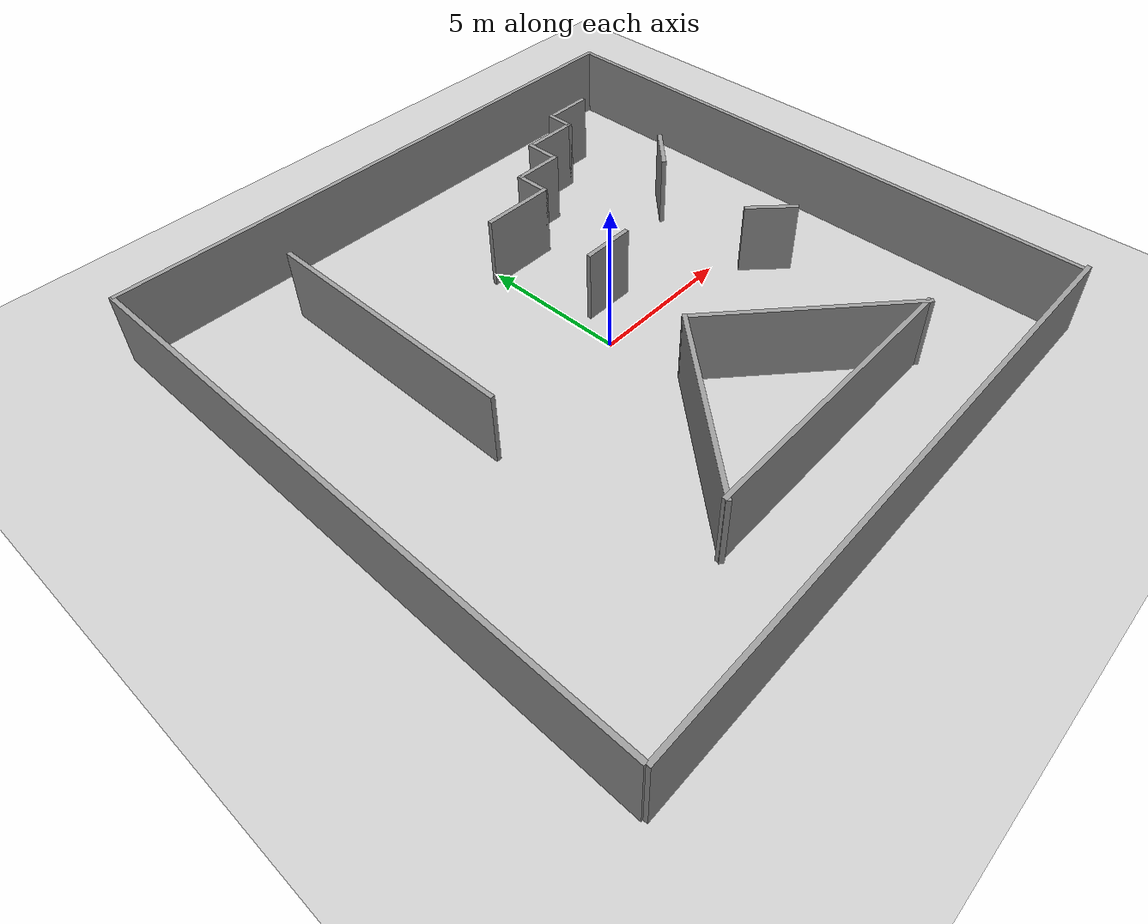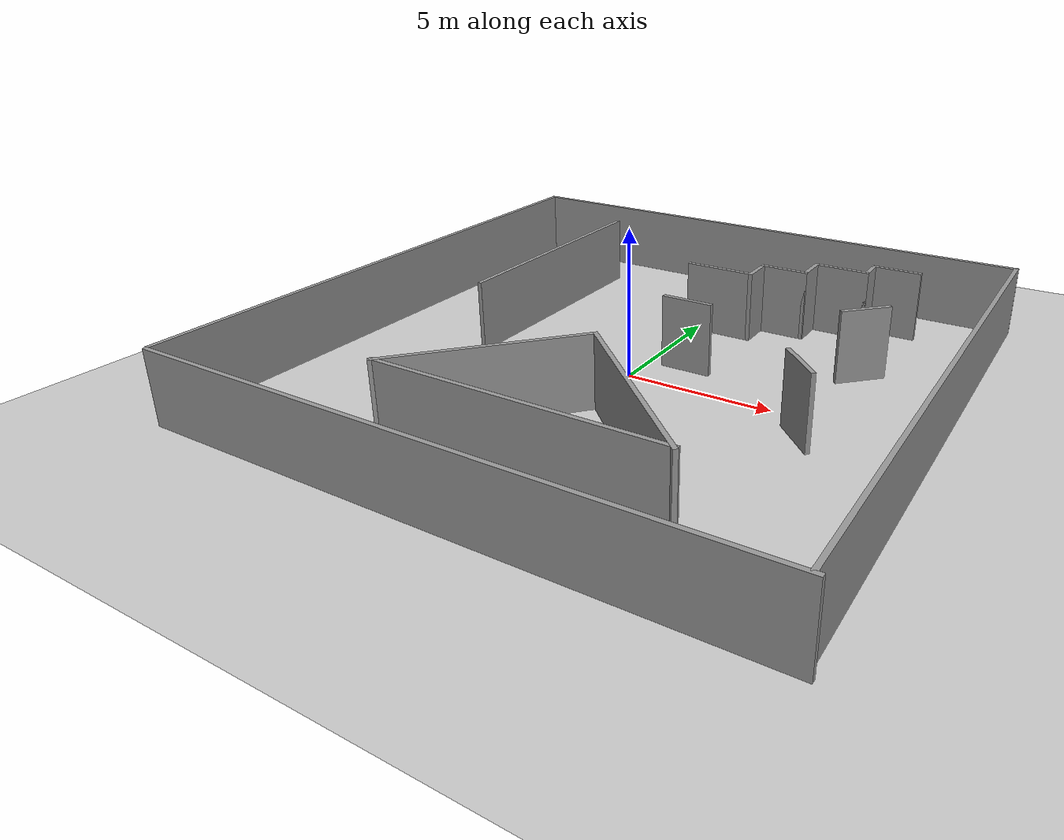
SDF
<sdf version="1.7">
 <world name="default">
  <light name="sun" type="directional">
   <pose>0 0 10 0 -0 0</pose>
   <diffuse>0.8 0.8 0.8 1</diffuse>
   <specular>0.2 0.2 0.2 1</specular>
   <attenuation>
    <range>1000</range>
    <constant>0.9</constant>
    <linear>0.01</linear>
    <quadratic>0.001</quadratic>
   </attenuation>
   <direction>-0.5 0.1 -0.9</direction>
   <spot><inner_angle>0</inner_angle><outer_angle>0</outer_angle><falloff>0</falloff></spot>
  </light>
  <model name="ground_plane">
   <static>1</static>
   <link name="link">
    <collision name="collision">
     <geometry><plane><normal>0 0 1</normal><size>100 100</size></plane></geometry>
     <surface>
      <contact><collide_bitmask>65535</collide_bitmask></contact>
      <friction><ode><mu>100</mu><mu2>50</mu2></ode></friction>
     </surface>
    </collision>
    <visual name="visual">
     <cast_shadows>0</cast_shadows>
     <geometry><plane><normal>0 0 1</normal><size>100 100</size></plane></geometry>
     <material>
      <script><uri>file://media/materials/scripts/gazebo.material</uri><name>Gazebo/Grey</name></script>
     </material>
    </visual>
   </link>
  </model>
  <gravity>0 0 -9.8</gravity>
  <magnetic_field>6e-06 2.3e-05 -4.2e-05</magnetic_field>
  <atmosphere type="adiabatic"/>
  <physics type="ode">
   <max_step_size>0.001</max_step_size>
   <real_time_factor>1</real_time_factor>
   <real_time_update_rate>1000</real_time_update_rate>
  </physics>
  <scene><ambient>0.4 0.4 0.4 1</ambient><background>0.7 0.7 0.7 1</background><shadows>1</shadows></scene>
  <spherical_coordinates>
   <surface_model>EARTH_WGS84</surface_model>
   <latitude_deg>0</latitude_deg>
   <longitude_deg>0</longitude_deg>
   <elevation>0</elevation>
   <heading_deg>0</heading_deg>
  </spherical_coordinates>
  <model name="grid_20_map">
   <pose>-0.011735 0.040278 0 0 -0 0</pose>
   <link name="Wall_0">
    <collision name="Wall_0_Collision">
     <geometry><box><size>20.1208 0.15 2.5</size></box></geometry>
     <pose>0 0 1.25 0 -0 0</pose>
    </collision>
    <visual name="Wall_0_Visual">
     <pose>0 0 1.25 0 -0 0</pose>
     <geometry><box><size>20.1208 0.15 2.5</size></box></geometry>
     <material>
      <script><uri>file://media/materials/scripts/gazebo.material</uri><name>Gazebo/Grey</name></script>
      <ambient>1 1 1 1</ambient>
     </material>
     <meta><layer>0</layer></meta>
    </visual>
    <pose>-0.033265 10.0836 0 0 -0 -0.003021</pose>
   </link>
   <link name="Wall_10">
    <collision name="Wall_10_Collision">
     <geometry><box><size>7.28414 0.15 2.5</size></box></geometry>
     <pose>0 0 1.25 0 -0 0</pose>
    </collision>
    <visual name="Wall_10_Visual">
     <pose>0 0 1.25 0 -0 0</pose>
     <geometry><box><size>7.28414 0.15 2.5</size></box></geometry>
     <material>
      <script><uri>file://media/materials/scripts/gazebo.material</uri><name>Gazebo/Grey</name></script>
      <ambient>1 1 1 1</ambient>
     </material>
     <meta><layer>0</layer></meta>
    </visual>
    <pose>2.96754 -4.98431 0 0 -0 -0.742914</pose>
   </link>
   <link name="Wall_11">
    <collision name="Wall_11_Collision">
     <geometry><box><size>9.75 0.15 2.5</size></box></geometry>
     <pose>0 0 1.25 0 -0 0</pose>
    </collision>
    <visual name="Wall_11_Visual">
     <pose>0 0 1.25 0 -0 0</pose>
     <geometry><box><size>9.75 0.15 2.5</size></box></geometry>
     <material>
      <script><uri>file://media/materials/scripts/gazebo.material</uri><name>Gazebo/Grey</name></script>
      <ambient>1 1 1 1</ambient>
     </material>
     <meta><layer>0</layer></meta>
    </visual>
    <pose>0.794691 -7.33686 0 0 -0 3.14159</pose>
   </link>
   <link name="Wall_12">
    <collision name="Wall_12_Collision">
     <geometry><box><size>6.6441 0.15 2.5</size></box></geometry>
     <pose>0 0 1.25 0 -0 0</pose>
    </collision>
    <visual name="Wall_12_Visual">
     <pose>0 0 1.25 0 -0 0</pose>
     <geometry><box><size>6.6441 0.15 2.5</size></box></geometry>
     <material>
      <script><uri>file://media/materials/scripts/gazebo.material</uri><name>Gazebo/Grey</name></script>
      <ambient>1 1 1 1</ambient>
     </material>
     <meta><layer>0</layer></meta>
    </visual>
    <pose>-1.83246 -4.98431 0 0 -0 0.837696</pose>
   </link>
   <link name="Wall_14">
    <collision name="Wall_14_Collision">
     <geometry><box><size>2.5 0.15 2.5</size></box></geometry>
     <pose>0 0 1.25 0 -0 0</pose>
    </collision>
    <visual name="Wall_14_Visual">
     <pose>0 0 1.25 0 -0 0</pose>
     <geometry><box><size>2.5 0.15 2.5</size></box></geometry>
     <material>
      <script><uri>file://media/materials/scripts/gazebo.material</uri><name>Gazebo/Grey</name></script>
      <ambient>1 1 1 1</ambient>
     </material>
     <meta><layer>0</layer></meta>
    </visual>
    <pose>0.911987 4.72981 0 0 -0 0</pose>
   </link>
   <link name="Wall_15">
    <collision name="Wall_15_Collision">
     <geometry><box><size>1.25 0.15 2.5</size></box></geometry>
     <pose>0 0 1.25 0 -0 0</pose>
    </collision>
    <visual name="Wall_15_Visual">
     <pose>0 0 1.25 0 -0 0</pose>
     <geometry><box><size>1.25 0.15 2.5</size></box></geometry>
     <material>
      <script><uri>file://media/materials/scripts/gazebo.material</uri><name>Gazebo/Grey</name></script>
      <ambient>1 1 1 1</ambient>
     </material>
     <meta><layer>0</layer></meta>
    </visual>
    <pose>2.08699 5.27981 0 0 -0 1.5708</pose>
   </link>
   <link name="Wall_16">
    <collision name="Wall_16_Collision">
     <geometry><box><size>1.75 0.15 2.5</size></box></geometry>
     <pose>0 0 1.25 0 -0 0</pose>
    </collision>
    <visual name="Wall_16_Visual">
     <pose>0 0 1.25 0 -0 0</pose>
     <geometry><box><size>1.75 0.15 2.5</size></box></geometry>
     <material>
      <script><uri>file://media/materials/scripts/gazebo.material</uri><name>Gazebo/Grey</name></script>
      <ambient>1 1 1 1</ambient>
     </material>
     <meta><layer>0</layer></meta>
    </visual>
    <pose>2.88699 5.82981 0 0 -0 0</pose>
   </link>
   <link name="Wall_17">
    <collision name="Wall_17_Collision">
     <geometry><box><size>1.25 0.15 2.5</size></box></geometry>
     <pose>0 0 1.25 0 -0 0</pose>
    </collision>
    <visual name="Wall_17_Visual">
     <pose>0 0 1.25 0 -0 0</pose>
     <geometry><box><size>1.25 0.15 2.5</size></box></geometry>
     <material>
      <script><uri>file://media/materials/scripts/gazebo.material</uri><name>Gazebo/Grey</name></script>
      <ambient>1 1 1 1</ambient>
     </material>
     <meta><layer>0</layer></meta>
    </visual>
    <pose>3.68699 6.37981 0 0 -0 1.5708</pose>
   </link>
   <link name="Wall_18">
    <collision name="Wall_18_Collision">
     <geometry><box><size>2 0.15 2.5</size></box></geometry>
     <pose>0 0 1.25 0 -0 0</pose>
    </collision>
    <visual name="Wall_18_Visual">
     <pose>0 0 1.25 0 -0 0</pose>
     <geometry><box><size>2 0.15 2.5</size></box></geometry>
     <material>
      <script><uri>file://media/materials/scripts/gazebo.material</uri><name>Gazebo/Grey</name></script>
      <ambient>1 1 1 1</ambient>
     </material>
     <meta><layer>0</layer></meta>
    </visual>
    <pose>4.61199 6.92981 0 0 -0 0</pose>
   </link>
   <link name="Wall_19">
    <collision name="Wall_19_Collision">
     <geometry><box><size>1 0.15 2.5</size></box></geometry>
     <pose>0 0 1.25 0 -0 0</pose>
    </collision>
    <visual name="Wall_19_Visual">
     <pose>0 0 1.25 0 -0 0</pose>
     <geometry><box><size>1 0.15 2.5</size></box></geometry>
     <material>
      <script><uri>file://media/materials/scripts/gazebo.material</uri><name>Gazebo/Grey</name></script>
      <ambient>1 1 1 1</ambient>
     </material>
     <meta><layer>0</layer></meta>
    </visual>
    <pose>5.53699 7.35481 0 0 -0 1.5708</pose>
   </link>
   <link name="Wall_2">
    <collision name="Wall_2_Collision">
     <geometry><box><size>20.25 0.15 2.5</size></box></geometry>
     <pose>0 0 1.25 0 -0 0</pose>
    </collision>
    <visual name="Wall_2_Visual">
     <pose>0 0 1.25 0 -0 0</pose>
     <geometry><box><size>20.25 0.15 2.5</size></box></geometry>
     <material>
      <script><uri>file://media/materials/scripts/gazebo.material</uri><name>Gazebo/Grey</name></script>
      <ambient>1 1 1 1</ambient>
     </material>
     <meta><layer>0</layer></meta>
    </visual>
    <pose>-10.0789 0.063777 0 0 -0 -1.5708</pose>
   </link>
   <link name="Wall_20">
    <collision name="Wall_20_Collision">
     <geometry><box><size>1.75 0.15 2.5</size></box></geometry>
     <pose>0 0 1.25 0 -0 0</pose>
    </collision>
    <visual name="Wall_20_Visual">
     <pose>0 0 1.25 0 -0 0</pose>
     <geometry><box><size>1.75 0.15 2.5</size></box></geometry>
     <material>
      <script><uri>file://media/materials/scripts/gazebo.material</uri><name>Gazebo/Grey</name></script>
      <ambient>1 1 1 1</ambient>
     </material>
     <meta><layer>0</layer></meta>
    </visual>
    <pose>6.33699 7.77981 0 0 -0 0</pose>
   </link>
   <link name="Wall_22">
    <collision name="Wall_22_Collision">
     <geometry><box><size>1.75 0.15 2.5</size></box></geometry>
     <pose>0 0 1.25 0 -0 0</pose>
    </collision>
    <visual name="Wall_22_Visual">
     <pose>0 0 1.25 0 -0 0</pose>
     <geometry><box><size>1.75 0.15 2.5</size></box></geometry>
     <material>
      <script><uri>file://media/materials/scripts/gazebo.material</uri><name>Gazebo/Grey</name></script>
      <ambient>1 1 1 1</ambient>
     </material>
     <meta><layer>0</layer></meta>
    </visual>
    <pose>1.38176 1.29039 0 0 -0 0</pose>
   </link>
   <link name="Wall_24">
    <collision name="Wall_24_Collision">
     <geometry><box><size>1.75 0.15 2.5</size></box></geometry>
     <pose>0 0 1.25 0 -0 0</pose>
    </collision>
    <visual name="Wall_24_Visual">
     <pose>0 0 1.25 0 -0 0</pose>
     <geometry><box><size>1.75 0.15 2.5</size></box></geometry>
     <material>
      <script><uri>file://media/materials/scripts/gazebo.material</uri><name>Gazebo/Grey</name></script>
      <ambient>1 1 1 1</ambient>
     </material>
     <meta><layer>0</layer></meta>
    </visual>
    <pose>6.59321 3.50038 0 0 -0 -2.35619</pose>
   </link>
   <link name="Wall_26">
    <collision name="Wall_26_Collision">
     <geometry><box><size>1.75 0.15 2.5</size></box></geometry>
     <pose>0 0 1.25 0 -0 0</pose>
    </collision>
    <visual name="Wall_26_Visual">
     <pose>0 0 1.25 0 -0 0</pose>
     <geometry><box><size>1.75 0.15 2.5</size></box></geometry>
     <material>
      <script><uri>file://media/materials/scripts/gazebo.material</uri><name>Gazebo/Grey</name></script>
      <ambient>1 1 1 1</ambient>
     </material>
     <meta><layer>0</layer></meta>
    </visual>
    <pose>6.2764 -1.32688 0 0 -0 -0.785398</pose>
   </link>
   <link name="Wall_4">
    <collision name="Wall_4_Collision">
     <geometry><box><size>20.25 0.15 2.5</size></box></geometry>
     <pose>0 0 1.25 0 -0 0</pose>
    </collision>
    <visual name="Wall_4_Visual">
     <pose>0 0 1.25 0 -0 0</pose>
     <geometry><box><size>20.25 0.15 2.5</size></box></geometry>
     <material>
      <script><uri>file://media/materials/scripts/gazebo.material</uri><name>Gazebo/Grey</name></script>
      <ambient>1 1 1 1</ambient>
     </material>
     <meta><layer>0</layer></meta>
    </visual>
    <pose>0.028946 -10.114 0 0 -0 0</pose>
   </link>
   <link name="Wall_6">
    <collision name="Wall_6_Collision">
     <geometry><box><size>20.25 0.15 2.5</size></box></geometry>
     <pose>0 0 1.25 0 -0 0</pose>
    </collision>
    <visual name="Wall_6_Visual">
     <pose>0 0 1.25 0 -0 0</pose>
     <geometry><box><size>20.25 0.15 2.5</size></box></geometry>
     <material>
      <script><uri>file://media/materials/scripts/gazebo.material</uri><name>Gazebo/Grey</name></script>
      <ambient>1 1 1 1</ambient>
     </material>
     <meta><layer>0</layer></meta>
    </visual>
    <pose>9.95208 0.003436 0 0 -0 -1.5708</pose>
   </link>
   <link name="Wall_8">
    <collision name="Wall_8_Collision">
     <geometry><box><size>9 0.15 2.5</size></box></geometry>
     <pose>0 0 1.25 0 -0 0</pose>
    </collision>
    <visual name="Wall_8_Visual">
     <pose>0 0 1.25 0 -0 0</pose>
     <geometry><box><size>9 0.15 2.5</size></box></geometry>
     <material>
      <script><uri>file://media/materials/scripts/gazebo.material</uri><name>Gazebo/Grey</name></script>
      <ambient>1 1 1 1</ambient>
     </material>
     <meta><layer>0</layer></meta>
    </visual>
    <pose>-5.45231 3.62355 0 0 -0 -1.5708</pose>
   </link>
   <static>1</static>
  </model>
 </world>
</sdf>
